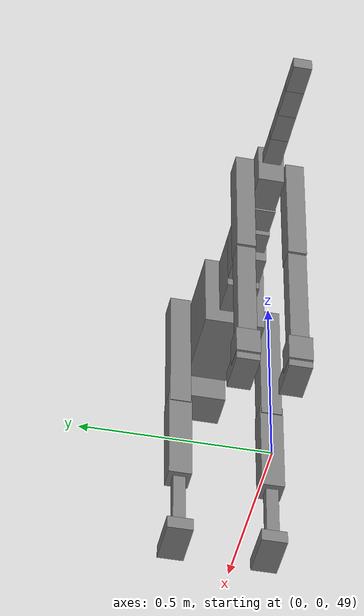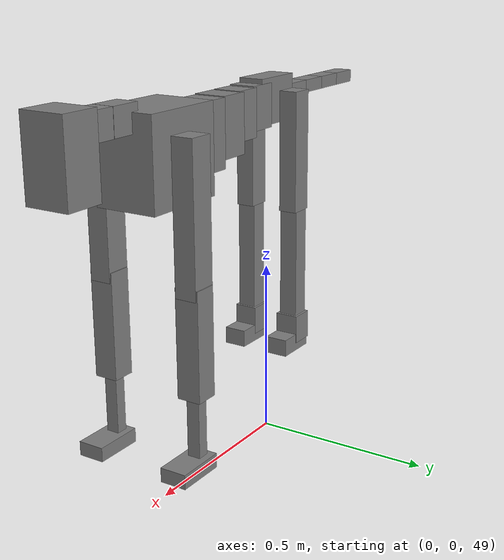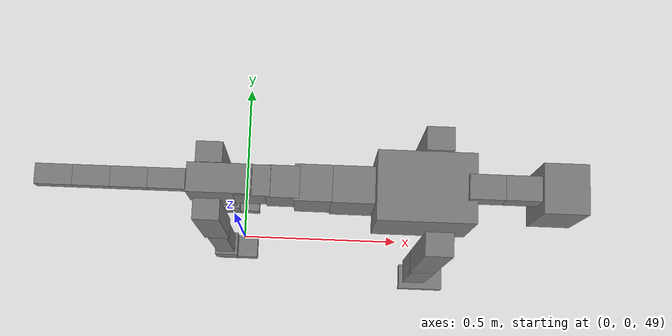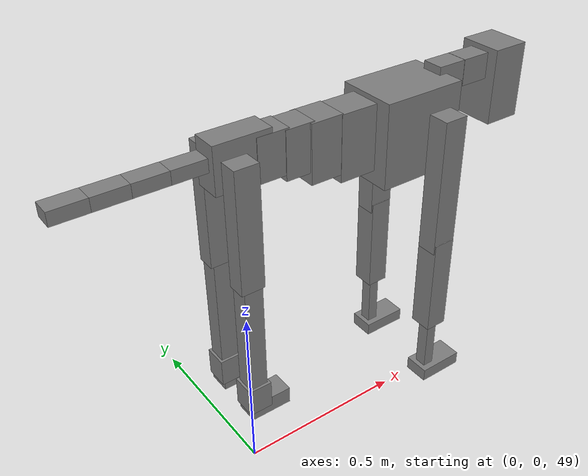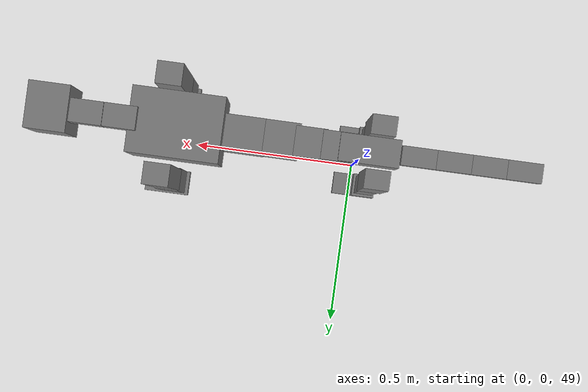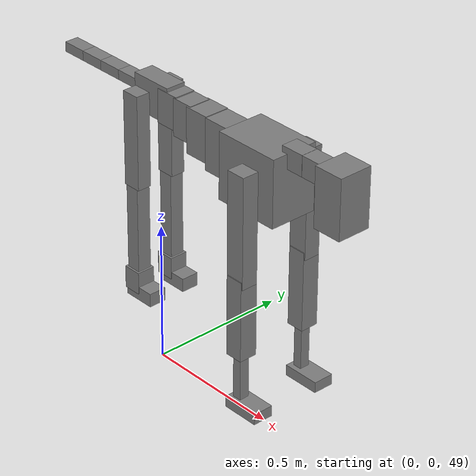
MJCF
<mujoco model="dog">

    <default>
        <joint armature="0.02" stiffness="1" damping="0.2" limited="true"/>
        <geom condim="3" friction="1 0.05 0.05" margin="0.01"/>
        <motor ctrllimited="true" ctrlrange="-1.0 1.0" forcelimited="true" gear="50"/>
    </default>

    <compiler inertiafromgeom="true" angle="radian"/>

    <option timestep="0.016" iterations="50" tolerance="1e-10" solver="Newton" jacobian="dense" cone="pyramidal"/>

    <size nconmax="20000" njmax="60000" nstack="5000000"/>
    <visual>
        <map force="0.1" zfar="30"/>
        <rgba haze="0.15 0.25 0.35 1"/>
        <quality shadowsize="2048"/>
        <global offwidth="800" offheight="800"/>
    </visual>

    <asset>
        <texture type="skybox" builtin="gradient" rgb1="0.3 0.5 0.7" rgb2="0 0 0" width="512" height="512"/>
        <texture name="texplane" type="2d" builtin="checker" rgb1=".2 .3 .4" rgb2=".1 0.15 0.2" width="512" height="512"
                 mark="cross" markrgb=".8 .8 .8"/>
        <texture name="texgeom" type="cube" builtin="flat" mark="cross" width="127" height="1278" rgb1="0.8 0.6 0.4"
                 rgb2="0.8 0.6 0.4" markrgb="1 1 1" random="0.01"/>

        <material name="matplane" reflectance="0.3" texture="texplane" texrepeat="1 1" texuniform="true"/>
        <material name="matgeom" texture="texgeom" texuniform="true" rgba="0.8 0.6 .4 1"/>
    </asset>

    <worldbody>
        <geom name="floor" pos="0 0 0" size="0 0 .25" type="plane" material="matplane" condim="3"/>

        <light directional="false" diffuse=".2 .2 .2" specular="0 0 0" pos="0 0 5" dir="0 0 -1" castshadow="false"/>
        <light mode="targetbodycom" target="torso" directional="false" diffuse=".8 .8 .8" specular="0.3 0.3 0.3"
               pos="0 0 4.0" dir="0 0 -1"/>

        <body name="root" pos="0 0 50">
            <freejoint name="root_1"/>
            <geom type="box" pos="0 0 -0.02" size="0.0774  0.0358  0.063" density="2030"/>

            <body name="spine1" pos="0.054 0 0">
                <joint name="spine1_y" axis="0 1 0" range="0 0.7" limited="true"/>
                <geom type="box" pos="0.02375 0 -0.03" size="0.04375  0.0375  0.05985" density="2030"/>

                <body name="spine2" pos="0.0612 0 0">
                    <joint name="spine2_y" axis="0 1 0" range="-0.15 0.15" limited="true"/>
                    <geom type="box" pos="0.03555  0  -0.04" size="0.04055  0.039  0.06615" density="2030"/>

                    <body name="spine3" pos="0.0730 0 0">
                        <joint name="spine3_y" axis="0 1 0" range="-0.15 0.15" limited="true"/>
                        <geom type="box" pos="0.03555  0  -0.057" size="0.04555  0.0445  0.081" density="2030"/>

                        <body name="spine4" pos="0.0780 0 0">
                            <joint name="spine4_y" axis="0 1 0" range="-0.15 0.15" limited="true"/>
                            <geom type="box" pos="0.05265  0  -0.07" size="0.05265  0.045  0.09135" density="2030"/>

                            <body name="torso" pos="0.1082 0 0">
                                <joint name="torso_y" axis="0 1 0" range="-0.15 0.15" limited="true"/>
                                <geom type="box" pos="0.11925  0  -0.085" size="0.11925  0.085  0.11745"
                                      density="2030"/>

                                <body name="neck1" pos="0.2160  0   0.0180">
                                    <joint name="neck1_y" axis="0 1 0" range="-1.2  -1" limited="true"/>
                                    <geom type="box" pos="0.0423  0  0" size="0.0423  0.03  0.036" density="2325"/>

                                    <body name="neck2" pos="0.0853  0  0">
                                        <joint name="neck2_y" axis="0 1 0" range="0.1  0" limited="true"/>
                                        <geom type="box" pos="0.0423  0  0" size="0.0423  0.03  0.036" density="2325"/>

                                        <body name="head" pos="0.0853  0  0">
                                            <joint name="head_y" axis="0 1 0" range="-0.3  -0.2" limited="true"/>
                                            <geom type="box" pos="0.0531  0  -0.055" size="0.0531  0.06  0.1044"
                                                  density="4030"/>

                                        </body>
                                    </body>
                                </body>

                                <body name="front_shoulder" pos="0.156  0   -0.0480">
                                    <joint name="front_shoulder_y" axis="0 1 0" range="-1 1.5" limited="true"/>
                                    <geom type="box" pos="0 0.13 -0.1676" size="0.0345  0.0295  0.1942" density="1158"/>
                                    <geom type="box" pos="0 -0.13 -0.1676" size="0.0345  0.0295  0.1942"
                                          density="1158"/>

                                    <body name="front_elbow" pos="0  0  -0.3352">
                                        <joint name="front_elbow_y" axis="0 1 0" range="-2 0" limited="true"/>
                                        <geom type="box" pos="0 0.13 -0.1434" size="0.0317  0.0324  0.1434"
                                              density="1081"/>
                                        <geom type="box" pos="0 -0.13 -0.1434" size="0.0317  0.0324  0.1434"
                                              density="1081"/>

                                        <body name="front_wrist" pos="0  0  -0.2867">
                                            <joint name="front_wrist_y" axis="0 1 0" range="-0.2 0" limited="true"/>
                                            <geom type="box" pos="0 0.13 -0.0864" size="0.0159  0.0177  0.0995"
                                                  density="1664"/>
                                            <geom type="box" pos="0 -0.13 -0.0864" size="0.0159  0.0177  0.0995"
                                                  density="1664"/>

                                            <body name="front_finger_end" pos="0  0  -0.1727">
                                                <joint name="front_finger_y" axis="0 1 0" range="-0.4 1"
                                                       limited="true"/>
                                                <geom type="box" pos="0.0365  0.13  -0.0043"
                                                      size="0.0669  0.0365  0.0193" density="1515"/>
                                                <geom type="box" pos="0.0365  -0.13  -0.0043"
                                                      size="0.0669  0.0365  0.0193" density="1515"/>

                                            </body>

                                        </body>
                                    </body>
                                </body>

                            </body>
                        </body>
                    </body>
                </body>
            </body>

            <body name="back_hip" pos="-0.03 0 -0.018">
                <joint name="back_hip_y" axis="0 1 0" range="-1.5 0.3" limited="true"/>
                <geom type="box" pos="0 0.07 -0.1445" size="0.0327  0.0256  0.1673" density="1154"/>
                <geom type="box" pos="0 -0.07 -0.1445" size="0.0327  0.0256  0.1673" density="1154"/>

                <body name="back_knee" pos="0  0  -0.2891">
                    <joint name="back_knee_y" axis="0 1 0" range="0 2.8" limited="true"/>
                    <geom type="box" pos="0 0.07 -0.1700" size="0.0258  0.0254  0.1855" density="1227"/>
                    <geom type="box" pos="0 -0.07 -0.1700" size="0.0258  0.0254  0.1855" density="1227"/>

                    <body name="back_ankle" pos="0  0  -0.3399">
                        <joint name="back_ankle_y" axis="0 1 0" range="-2.2 0" limited="true"/>
                        <geom type="box" pos="0 0.07 -0.0288" size="0.0327  0.0327  0.0400" density="1284"/>
                        <geom type="box" pos="0 -0.07 -0.0288" size="0.0327  0.0327  0.0400" density="1284"/>

                        <body name="back_toe_end" pos="0  0  -0.0576">
                            <joint name="back_toe_y" axis="0 1 0" range="-0.4 1" limited="true"/>
                            <geom type="box" pos="0.0317  0.07  -0.0092" size="0.0581  0.0317  0.0242" density="1515"/>
                            <geom type="box" pos="0.0317  -0.07  -0.0092" size="0.0581  0.0317  0.0242" density="1515"/>

                        </body>
                    </body>
                </body>
            </body>

            <body name="tail1" pos="-0.074 0 -0.006">
                <joint name="tail1_y" axis="0 1 0" range="-0.2 0.2" limited="true"/>
                <geom type="box" pos="-0.0536  0  0" size="0.045  0.025  0.0175" density="1587"/>

                <body name="tail2" pos="-0.09 0 0">
                    <joint name="tail2_y" axis="0 1 0" range="-0.2 0.2" limited="true"/>
                    <geom type="box" pos="-0.0536  0  0" size="0.045  0.025  0.0175" density="1587"/>

                    <body name="tail3" pos="-0.09 0 0">
                        <joint name="tail3_y" axis="0 1 0" range="-0.2 0.2" limited="true"/>
                        <geom type="box" pos="-0.0536  0  0" size="0.045  0.025  0.0175" density="1587"/>

                        <body name="tail4" pos="-0.09 0 0">
                            <joint name="tail4_y" axis="0 1 0" range="-0.2 0.2" limited="true"/>
                            <geom type="box" pos="-0.0536  0  0" size="0.045  0.025  0.0175" density="1587"/>

                        </body>
                    </body>
                </body>
            </body>
        </body>
    </worldbody>

    <actuator>
        <motor joint="spine1_y" forcerange="-150 150     "/>
        <motor joint="spine2_y" forcerange="-150 150     "/>
        <motor joint="spine3_y" forcerange="-150 150     "/>
        <motor joint="spine4_y" forcerange="-150 150     "/>
        <motor joint="torso_y" forcerange="-150 150     "/>
        <motor joint="neck1_y" forcerange="-100 100       "/>
        <motor joint="neck2_y" forcerange="-100 100       "/>
        <motor joint="head_y" forcerange="-150 150       "/>
        <motor joint="front_shoulder_y" forcerange="-134.02 162.39"/>
        <motor joint="front_elbow_y" forcerange="-176.01 159.63"/>
        <motor joint="front_wrist_y" forcerange="-72.49 69.08"/>
        <motor joint="front_finger_y" forcerange="-61.01 93.69"/>
        <motor joint="back_hip_y" forcerange="-244.84 296.68"/>
        <motor joint="back_knee_y" forcerange="-217.13 352.81"/>
        <motor joint="back_angle_y" forcerange="-219.46 203.64"/>
        <motor joint="back_toe_y" forcerange="-103.74 69.73"/>
        <motor joint="tail1_y" forcerange="-50 50     "/>
        <motor joint="tail2_y" forcerange="-50 50     "/>
        <motor joint="tail3_y" forcerange="-50 50     "/>
        <motor joint="tail4_y" forcerange="-50 50     "/>
    </actuator>
</mujoco>
